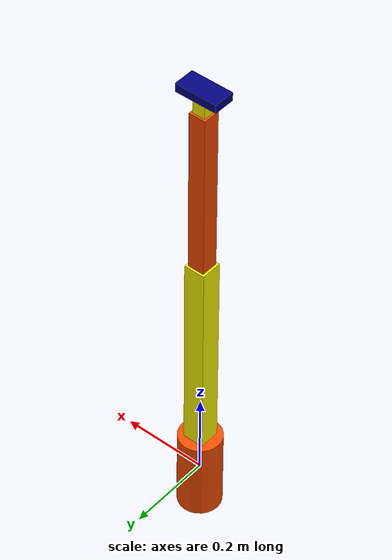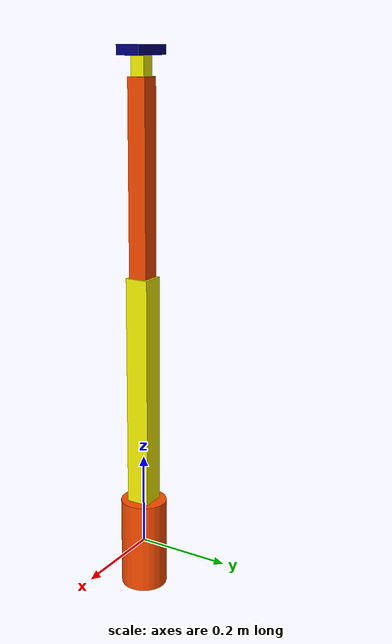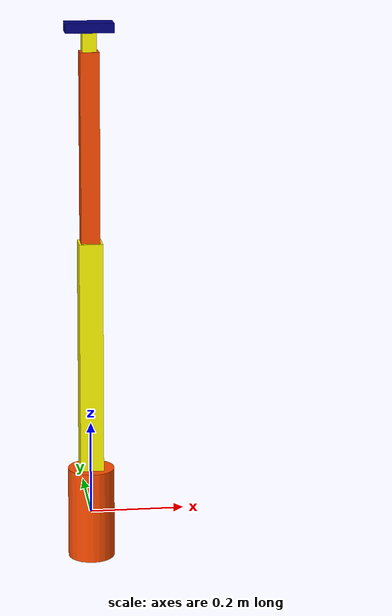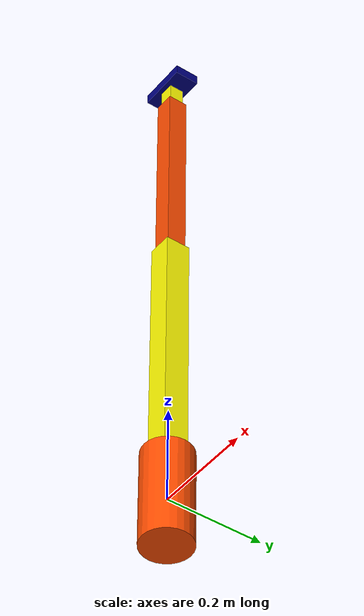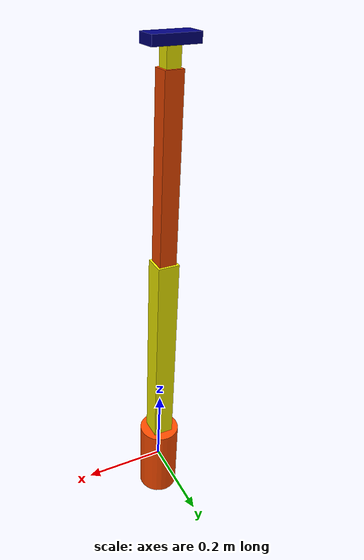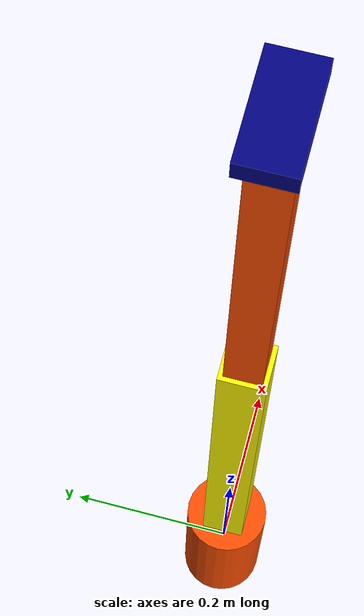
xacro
<?xml version="1.0"?>

<robot name="usenav_arm" xmlns:xacro="https://wiki.ros.org/xacro">

    <xacro:include filename="../common_properties.xacro" />
    <xacro:include filename="./arm.xacro" />
    <xacro:include filename="./arm_gz.xacro" />

    <link name="base_footprint" />

    <joint name="base_joint" type="fixed">
        <parent link="base_footprint" />
        <child link="base_link" />
        <origin xyz="0.0 0.0 0.0" rpy="0.0 0.0 0.0"/>
    </joint>

    <link name="base_link" />

    <joint name="joint1" type="revolute">
        <parent link="base_footprint" />
        <child link="link1" />
        <origin xyz="0.0 0.0 0.0" rpy="0.0 0.0 0.0"/>
        <axis xyz="0 0 1" />
        <limit lower="-3.14" upper="3.14" effort="100" velocity="1" />
    </joint>

</robot>

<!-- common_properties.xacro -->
<robot xmlns:xacro="http://www.ros.org/wiki/xacro">

    <material name="red">
        <color rgba="0.5 0 0 1" />
    </material>

    <material name="green">
        <color rgba="0 0.5 0 1" />
    </material>

    <material name="blue">
        <color rgba="0 0 0.5 1" />
    </material>

    <material name="pink">
        <color rgba="1 0 0.5 1" />
    </material>

    <material name="grey">
        <color rgba="0.5 0.5 0.5 1" />
    </material>

    <material name="orange">
        <color rgba="1 0.3 0.0 1" />
    </material>

    <material name="yellow">
        <color rgba="1 0.984 0.0 1" />
    </material>

    <xacro:property name="INERTIA_MULTIPLY" value="2" />

    <xacro:macro name="box_inertia" params="m l w h xyz rpy">
        <inertial>
            <origin xyz="${xyz}" rpy="${rpy}" />
            <mass value="${m}" />
            <inertia
                ixx="${(m/12) * (h*h + l*l)}" ixy="0.0" ixz="0.0"
                iyy="${(m/12) * (w*w + l*l)}" iyz="0.0"
                izz="${(m/12) * (w*w + h*h)}" />
        </inertial>
    </xacro:macro>

    <xacro:macro name="sphere_inertia" params="m r xyz rpy">
        <inertial>
            <origin xyz="${xyz}" rpy="${rpy}" />
            <mass value="${m}" />
            <inertia
                ixx="${(2/5) * m * r*r}" ixy="0.0" ixz="0.0"
                iyy="${(2/5) * m * r*r}" iyz="0.0"
                izz="${(2/5) * m * r*r}" />
        </inertial>
    </xacro:macro>

    <xacro:macro name="cylinder_inertia" params="m r h xyz rpy">
        <inertial>
            <origin xyz="${xyz}" rpy="${rpy}" />
            <mass value="${m}" />
            <inertia
                ixx="${(m / 12) * (3 * r*r + h*h)}" ixy="0.0" ixz="0.0"
                iyy="${(m / 12) * (3 * r*r + h*h)}" iyz="0.0"
                izz="${(m / 2) * r*r}" />
        </inertial>
    </xacro:macro>

</robot>

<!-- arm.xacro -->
<robot xmlns:xacro="https://wiki.ros.org/xacro">

    <xacro:property name="LINK1_MASS" value="0.1" />
    <xacro:property name="LINK2_MASS" value="0.1" />
    <xacro:property name="LINK3_MASS" value="0.1" />
    <xacro:property name="LINK4_MASS" value="0.1" />
    <xacro:property name="LINK_EE_MASS" value="0.1" />

    <link name="link1">
        <visual>
            <geometry>
                <cylinder radius="0.05" length="0.2" />
            </geometry>
            <material name="orange" />
        </visual>
        <inertial>
            <mass value="0.1" />
            <inertia ixx="0.001" ixy="0" ixz="0" iyy="0.001" iyz="0" izz="0.001" />
        </inertial>
    </link>

    <link name="link2">
        <visual>
            <origin xyz="0 0 0.25" />
            <geometry>
                <box size="0.05 0.05 0.5" />
            </geometry>
            <material name="yellow" />
        </visual>
        <inertial>
            <mass value="0.1" />
            <inertia ixx="0.001" ixy="0" ixz="0" iyy="0.001" iyz="0" izz="0.001" />
        </inertial>
    </link>

    <joint name="joint2" type="revolute">
        <parent link="link1" />
        <child link="link2" />
        <origin xyz="0 0 0.1" />
        <axis xyz="0 1 0" />
        <limit lower="-1.57" upper="1.57" effort="500" velocity="1" />
    </joint>

    <link name="link3">
        <visual>
            <origin xyz="0 0 0.2" />
            <geometry>
                <box size="0.04 0.04 0.4" />
            </geometry>
            <material name="orange" />
        </visual>
        <inertial>
            <mass value="0.1" />
            <inertia ixx="0.001" ixy="0" ixz="0" iyy="0.001" iyz="0" izz="0.001" />
        </inertial>
    </link>
    <joint name="joint3" type="revolute">
        <parent link="link2" />
        <child link="link3" />
        <origin xyz="0 0 0.5" />
        <axis xyz="0 1 0" />
        <limit lower="-2.5" upper="2.5" effort="200" velocity="1" />
    </joint>

    <link name="link4">
        <visual>
            <geometry>
                <box size="0.03 0.03 0.1" />
            </geometry>
            <material name="yellow" />
        </visual>
        <inertial>
            <mass value="0.01" />
            <inertia ixx="0.0001" ixy="0" ixz="0" iyy="0.0001" iyz="0" izz="0.0001" />
        </inertial>
    </link>
    <joint name="joint4" type="revolute">
        <parent link="link3" />
        <child link="link4" />
        <origin xyz="0 0 0.4" />
        <axis xyz="0 1 0" />
        <limit lower="-1.57" upper="1.57" effort="100" velocity="1" />
    </joint>

    <link name="end_effector">
        <visual>
            <geometry>
                <box size="0.1 0.05 0.02" />
            </geometry>
            <material name="blue" />
        </visual>
        <inertial>
            <mass value="0.01" />
            <inertia ixx="0.0001" ixy="0" ixz="0" iyy="0.0001" iyz="0" izz="0.0001" />
        </inertial>
    </link>
    <joint name="joint5" type="revolute">
        <parent link="link4" />
        <child link="end_effector" />
        <origin xyz="0 0 0.05" />
        <axis xyz="0 0 1" />
        <limit lower="-3.14" upper="3.14" effort="50" velocity="1" />
    </joint>
</robot>
